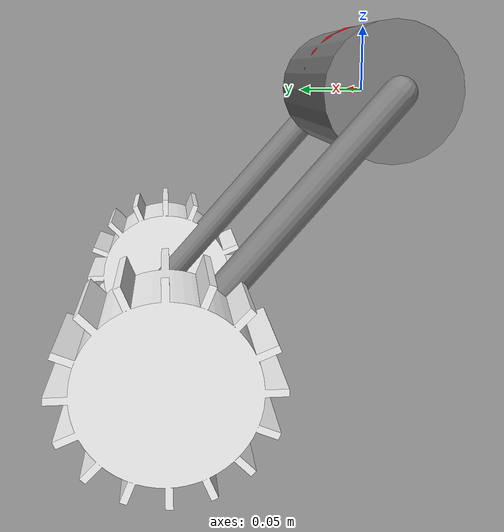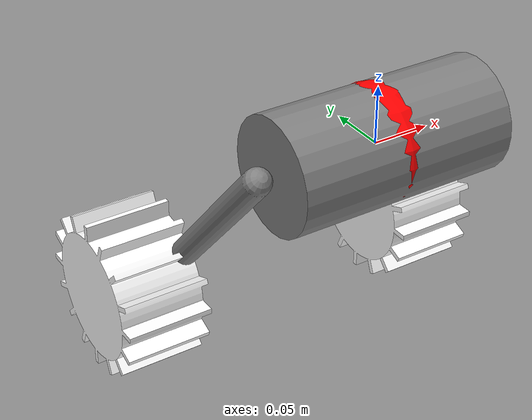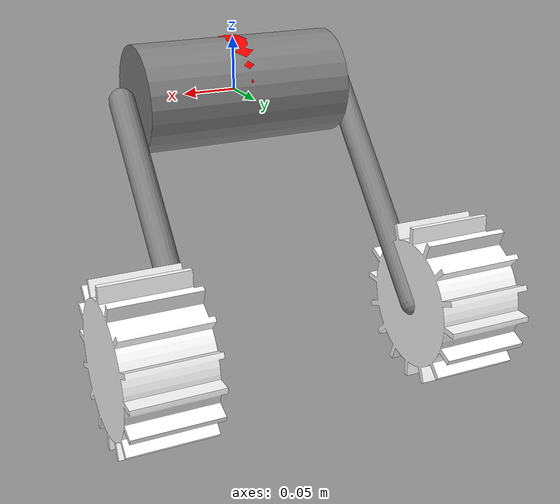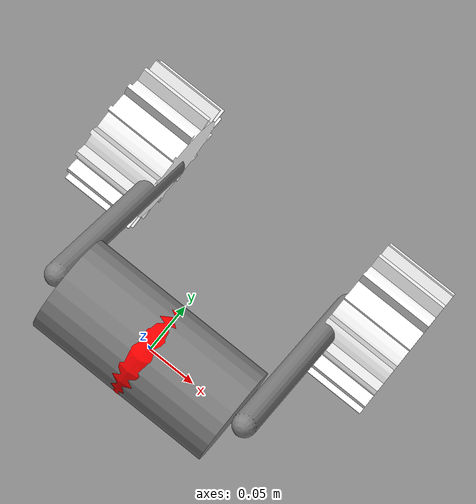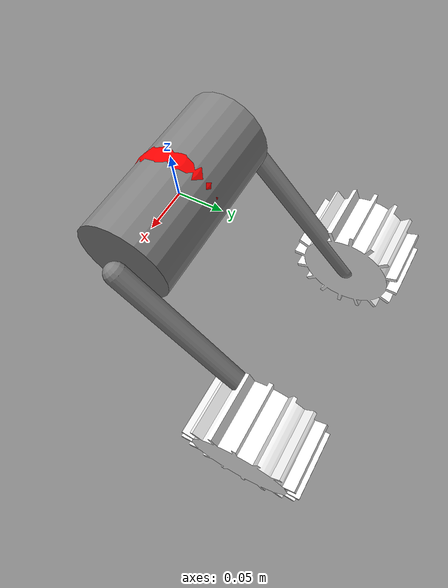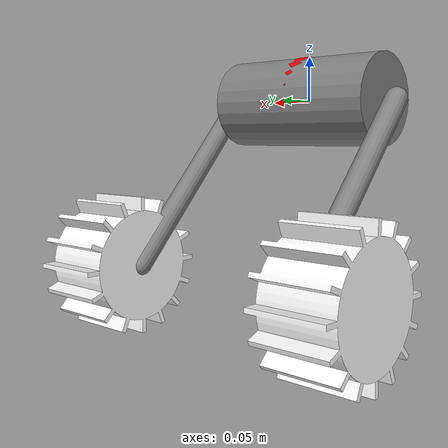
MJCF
<mujoco model="2wheel_arm_body_slider_rotate">
  <compiler angle="radian"/>

  <asset>
    <mesh name="wheel" file="mesh/wheel.stl" scale="0.001 0.001 0.001" inertia="exact" refquat="1 0 0 0"/>
  </asset>

  <worldbody>
    <body name="2wheel_arm">
      <joint name="body_free_joint" type="free" damping="1"/>

      <body name="main_body" pos="0 0 0">
        <geom name="main_body_geom" group="2" type="cylinder" fromto="0.0975 0 0 -0.0975 0 0" size="0.05" mass="0.5"/>

        <site name="marker" pos="0 -0.0005 0.001" size="0.05" type="sphere" rgba="1 0 0 1"/>
        <site name="IMU" pos="0 0 0" size="0.01" rgba="1 0 1 1"/>
        <site name="GYRO" pos="0 0 0" size="0.01" rgba="0 1 1 1"/>
        <site name="VELOCITY" pos="0 0 0" size="0.01" rgba="0 1 1 1"/>

        <body name="r_arm" pos="0.11 0 0">
          <joint name="r_arm_rotate_joint" type="hinge" axis="-1 0 0" damping="0.3" frictionloss="0.01"/>
          <joint name="r_arm_slide_joint" type="slide" axis="0 0.16 -0.18" limited="true" range="-0.2408319 0" damping="0.3" frictionloss="0.01"/>
          <geom name="r_arm_geom" group="2" type="capsule" fromto="0 0 0 0 0.16 -0.18" size="0.012" mass="0.1"/>
          <body name="r_wheel" pos="0.035 0.16 -0.18">
            <joint name="r_wheel_joint" type="hinge" axis="-1 0 0" damping="0.3" frictionloss="0.01"/>
            <geom name="r_wheel_geom" group="2" type="mesh" mesh="wheel" mass="0.25" pos="-0.04 0 0" rgba="1 1 1 1" friction="1 0.1 0.1"/>
          </body>
        </body>

        <body name="l_arm" pos="-0.11 0 0">
          <!-- mirror of r_arm -->
          <joint name="l_arm_rotate_joint" type="hinge" axis="-1 0 0" damping="0.3" frictionloss="0.01"/>
          <joint name="l_arm_slide_joint" type="slide" axis="0 0.16 -0.18" limited="true" range="-0.2408319 0" damping="0.3" frictionloss="0.01"/>
          <geom name="l_arm_geom" group="2" type="capsule" fromto="0 0 0 0 0.16 -0.18" size="0.012" mass="0.1"/>
          <body name="l_wheel" pos="-0.035 0.16 -0.18">
            <joint name="l_wheel_joint" type="hinge" axis="-1 0 0" damping="0.3" frictionloss="0.01"/>
            <geom name="l_wheel_geom" group="2" type="mesh" mesh="wheel" mass="0.25" pos="-0.04 0 0" rgba="1 1 1 1" friction="1 0.1 0.1"/>
          </body>
        </body>
      </body>
    </body>
  </worldbody>

  <actuator>
    <intvelocity name="r_motor" joint="r_wheel_joint" gear="1" kp="1" actrange="-inf inf" ctrllimited="true" ctrlrange="-5.2359877 5.2359877" forcelimited="true" forcerange="-2.94 2.94"/>
    <intvelocity name="l_motor" joint="l_wheel_joint" gear="1" kp="1" actrange="-inf inf" ctrllimited="true" ctrlrange="-5.2359877 5.2359877" forcelimited="true" forcerange="-2.94 2.94"/>
    <intvelocity name="r_arm_rotate_motor" joint="r_arm_rotate_joint" gear="1" kp="1" actrange="-inf inf" ctrllimited="true" ctrlrange="-5.2359877 5.2359877" forcelimited="true" forcerange="-2.94 2.94"/>
    <intvelocity name="l_arm_rotate_motor" joint="l_arm_rotate_joint" gear="1" kp="1" actrange="-inf inf" ctrllimited="true" ctrlrange="-5.2359877 5.2359877" forcelimited="true" forcerange="-2.94 2.94"/>
    <position name="r_arm_slide_motor" joint="r_arm_slide_joint" gear="-4.1522738" kp="100" kv="3.48" timeconst="0.5" ctrllimited="true" ctrlrange="0 1" forcelimited="true" forcerange="-30 30"/>
    <position name="l_arm_slide_motor" joint="l_arm_slide_joint" gear="-4.1522738" kp="100" kv="3.48" timeconst="0.5" ctrllimited="true" ctrlrange="0 1" forcelimited="true" forcerange="-30 30"/>
  </actuator>

  <sensor>
    <accelerometer name="accelerometer" site="IMU"/>
    <gyro name="gyro" site="GYRO"/>
    <velocimeter name="velocimeter" site="VELOCITY"/>
  </sensor>
</mujoco>
